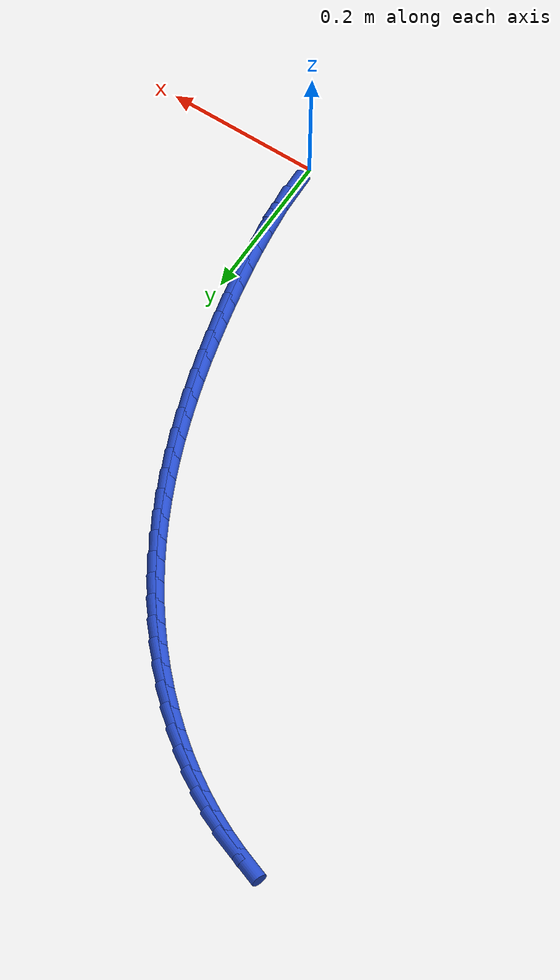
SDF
<sdf version="1.6">
 <world name="default">
  <model name="ground_plane">
   <static>1</static>
   <link name="link">
    <collision name="collision">
     <geometry><plane><normal>0 0 1</normal><size>100 100</size></plane></geometry>
     <surface><friction><ode><mu>100</mu><mu2>50</mu2></ode></friction></surface>
    </collision>
    <visual name="visual">
     <cast_shadows>0</cast_shadows>
     <geometry><plane><normal>0 0 1</normal><size>100 100</size></plane></geometry>
     <material>
      <script><uri>file://media/materials/scripts/gazebo.material</uri><name>Gazebo/WhiteGlow</name></script>
     </material>
    </visual>
   </link>
  </model>
  <model name="line">
   <link name="link_3">
    <pose>-0.003607352523385755 0.08382974127847832 0.01 0 1.57 -1.4645300538066999</pose>
    <collision name="collision">
     <geometry><cylinder><radius>0.01</radius><length>0.08</length></cylinder></geometry>
    </collision>
    <visual name="visual">
     <material>
      <script><name>Gazebo/Blue</name><uri>file://media/materials/scripts/gazebo.material</uri></script>
     </material>
     <geometry><cylinder><radius>0.01</radius><length>0.08</length></cylinder></geometry>
    </visual>
   </link>
   <link name="link_4">
    <pose>-0.0065976549613141495 0.1118634518213048 0.01 0 1.57 -1.437489420957152</pose>
    <collision name="collision">
     <geometry><cylinder><radius>0.01</radius><length>0.08</length></cylinder></geometry>
    </collision>
    <visual name="visual">
     <material>
      <script><name>Gazebo/Blue</name><uri>file://media/materials/scripts/gazebo.material</uri></script>
     </material>
     <geometry><cylinder><radius>0.01</radius><length>0.08</length></cylinder></geometry>
    </visual>
   </link>
   <link name="link_5">
    <pose>-0.010358168758492799 0.1399055974653575 0.01 0 1.57 -1.4131174889527256</pose>
    <collision name="collision">
     <geometry><cylinder><radius>0.01</radius><length>0.08</length></cylinder></geometry>
    </collision>
    <visual name="visual">
     <material>
      <script><name>Gazebo/Blue</name><uri>file://media/materials/scripts/gazebo.material</uri></script>
     </material>
     <geometry><cylinder><radius>0.01</radius><length>0.08</length></cylinder></geometry>
    </visual>
   </link>
   <link name="link_6">
    <pose>-0.014814665251431929 0.1679341002363722 0.01 0 1.57 -1.39133521005308</pose>
    <collision name="collision">
     <geometry><cylinder><radius>0.01</radius><length>0.08</length></cylinder></geometry>
    </collision>
    <visual name="visual">
     <material>
      <script><name>Gazebo/Blue</name><uri>file://media/materials/scripts/gazebo.material</uri></script>
     </material>
     <geometry><cylinder><radius>0.01</radius><length>0.08</length></cylinder></geometry>
    </visual>
   </link>
   <link name="link_7">
    <pose>-0.019892915776641748 0.19592688216008453 0.01 0 1.57 -1.372066318699521</pose>
    <collision name="collision">
     <geometry><cylinder><radius>0.01</radius><length>0.08</length></cylinder></geometry>
    </collision>
    <visual name="visual">
     <material>
      <script><name>Gazebo/Blue</name><uri>file://media/materials/scripts/gazebo.material</uri></script>
     </material>
     <geometry><cylinder><radius>0.01</radius><length>0.08</length></cylinder></geometry>
    </visual>
   </link>
   <link name="link_8">
    <pose>-0.025518691670632452 0.22386186526223 0.01 0 1.57 -1.3549656669186012</pose>
    <collision name="collision">
     <geometry><cylinder><radius>0.01</radius><length>0.08</length></cylinder></geometry>
    </collision>
    <visual name="visual">
     <material>
      <script><name>Gazebo/Blue</name><uri>file://media/materials/scripts/gazebo.material</uri></script>
     </material>
     <geometry><cylinder><radius>0.01</radius><length>0.08</length></cylinder></geometry>
    </visual>
   </link>
   <link name="link_9">
    <pose>-0.03162565596827973 0.2517163037976803 0.01 0 1.57 -1.3376442971754925</pose>
    <collision name="collision">
     <geometry><cylinder><radius>0.01</radius><length>0.08</length></cylinder></geometry>
    </collision>
    <visual name="visual">
     <material>
      <script><name>Gazebo/Blue</name><uri>file://media/materials/scripts/gazebo.material</uri></script>
     </material>
     <geometry><cylinder><radius>0.01</radius><length>0.08</length></cylinder></geometry>
    </visual>
   </link>
   <link name="link_10">
    <pose>-0.038214394773935435 0.2794617892002172 0.01 0 1.57 -1.3188914202939175</pose>
    <collision name="collision">
     <geometry><cylinder><radius>0.01</radius><length>0.08</length></cylinder></geometry>
    </collision>
    <visual name="visual">
     <material>
      <script><name>Gazebo/Blue</name><uri>file://media/materials/scripts/gazebo.material</uri></script>
     </material>
     <geometry><cylinder><radius>0.01</radius><length>0.08</length></cylinder></geometry>
    </visual>
   </link>
   <link name="link_11">
    <pose>-0.045319218790244274 0.3070670592334612 0.01 0 1.57 -1.2986659421992113</pose>
    <collision name="collision">
     <geometry><cylinder><radius>0.01</radius><length>0.08</length></cylinder></geometry>
    </collision>
    <visual name="visual">
     <material>
      <script><name>Gazebo/Blue</name><uri>file://media/materials/scripts/gazebo.material</uri></script>
     </material>
     <geometry><cylinder><radius>0.01</radius><length>0.08</length></cylinder></geometry>
    </visual>
   </link>
   <link name="link_12">
    <pose>-0.05297469626796127 0.3345008298681169 0.01 0 1.57 -1.2769356533541465</pose>
    <collision name="collision">
     <geometry><cylinder><radius>0.01</radius><length>0.08</length></cylinder></geometry>
    </collision>
    <visual name="visual">
     <material>
      <script><name>Gazebo/Blue</name><uri>file://media/materials/scripts/gazebo.material</uri></script>
     </material>
     <geometry><cylinder><radius>0.01</radius><length>0.08</length></cylinder></geometry>
    </visual>
   </link>
   <link name="link_13">
    <pose>-0.061215395457841486 0.36173181707488805 0.01 0 1.57 -1.2536695181772743</pose>
    <collision name="collision">
     <geometry><cylinder><radius>0.01</radius><length>0.08</length></cylinder></geometry>
    </collision>
    <visual name="visual">
     <material>
      <script><name>Gazebo/Blue</name><uri>file://media/materials/scripts/gazebo.material</uri></script>
     </material>
     <geometry><cylinder><radius>0.01</radius><length>0.08</length></cylinder></geometry>
    </visual>
   </link>
   <link name="link_14">
    <pose>-0.07007588461063995 0.38872873682447906 0.01 0 1.57 -1.228839149628577</pose>
    <collision name="collision">
     <geometry><cylinder><radius>0.01</radius><length>0.08</length></cylinder></geometry>
    </collision>
    <visual name="visual">
     <material>
      <script><name>Gazebo/Blue</name><uri>file://media/materials/scripts/gazebo.material</uri></script>
     </material>
     <geometry><cylinder><radius>0.01</radius><length>0.08</length></cylinder></geometry>
    </visual>
   </link>
   <link name="link_15">
    <pose>-0.0795907319771117 0.41546030508759385 0.01 0 1.57 -1.2024204957721947</pose>
    <collision name="collision">
     <geometry><cylinder><radius>0.01</radius><length>0.08</length></cylinder></geometry>
    </collision>
    <visual name="visual">
     <material>
      <script><name>Gazebo/Blue</name><uri>file://media/materials/scripts/gazebo.material</uri></script>
     </material>
     <geometry><cylinder><radius>0.01</radius><length>0.08</length></cylinder></geometry>
    </visual>
   </link>
   <link name="link_16">
    <pose>-0.08979450580801174 0.4418952378349365 0.01 0 1.57 -1.1743957397551579</pose>
    <collision name="collision">
     <geometry><cylinder><radius>0.01</radius><length>0.08</length></cylinder></geometry>
    </collision>
    <visual name="visual">
     <material>
      <script><name>Gazebo/Blue</name><uri>file://media/materials/scripts/gazebo.material</uri></script>
     </material>
     <geometry><cylinder><radius>0.01</radius><length>0.08</length></cylinder></geometry>
    </visual>
   </link>
   <link name="link_17">
    <pose>-0.10072177435409517 0.46800225103721155 0.01 0 1.57 -1.1447553988098094</pose>
    <collision name="collision">
     <geometry><cylinder><radius>0.01</radius><length>0.08</length></cylinder></geometry>
    </collision>
    <visual name="visual">
     <material>
      <script><name>Gazebo/Blue</name><uri>file://media/materials/scripts/gazebo.material</uri></script>
     </material>
     <geometry><cylinder><radius>0.01</radius><length>0.08</length></cylinder></geometry>
    </visual>
   </link>
   <link name="link_18">
    <pose>-0.11240710586611694 0.4937500606651226 0.01 0 1.57 -1.1135005869287327</pose>
    <collision name="collision">
     <geometry><cylinder><radius>0.01</radius><length>0.08</length></cylinder></geometry>
    </collision>
    <visual name="visual">
     <material>
      <script><name>Gazebo/Blue</name><uri>file://media/materials/scripts/gazebo.material</uri></script>
     </material>
     <geometry><cylinder><radius>0.01</radius><length>0.08</length></cylinder></geometry>
    </visual>
   </link>
   <link name="link_19">
    <pose>-0.1248850685948322 0.5191073826893744 0.01 0 1.57 -1.0806453798587448</pose>
    <collision name="collision">
     <geometry><cylinder><radius>0.01</radius><length>0.08</length></cylinder></geometry>
    </collision>
    <visual name="visual">
     <material>
      <script><name>Gazebo/Blue</name><uri>file://media/materials/scripts/gazebo.material</uri></script>
     </material>
     <geometry><cylinder><radius>0.01</radius><length>0.08</length></cylinder></geometry>
    </visual>
   </link>
   <link name="link_20">
    <pose>-0.1381902307909959 0.5440429330806705 0.01 0 1.57 -1.0462191909756156</pose>
    <collision name="collision">
     <geometry><cylinder><radius>0.01</radius><length>0.08</length></cylinder></geometry>
    </collision>
    <visual name="visual">
     <material>
      <script><name>Gazebo/Blue</name><uri>file://media/materials/scripts/gazebo.material</uri></script>
     </material>
     <geometry><cylinder><radius>0.01</radius><length>0.08</length></cylinder></geometry>
    </visual>
   </link>
   <link name="link_21">
    <pose>-0.15235716070536312 0.5685254278097154 0.01 0 1.57 -1.0102690345931147</pose>
    <collision name="collision">
     <geometry><cylinder><radius>0.01</radius><length>0.08</length></cylinder></geometry>
    </collision>
    <visual name="visual">
     <material>
      <script><name>Gazebo/Blue</name><uri>file://media/materials/scripts/gazebo.material</uri></script>
     </material>
     <geometry><cylinder><radius>0.01</radius><length>0.08</length></cylinder></geometry>
    </visual>
   </link>
   <link name="link_22">
    <pose>-0.16742042658868891 0.5925235828472133 0.01 0 1.57 -0.9728615229176963</pose>
    <collision name="collision">
     <geometry><cylinder><radius>0.01</radius><length>0.08</length></cylinder></geometry>
    </collision>
    <visual name="visual">
     <material>
      <script><name>Gazebo/Blue</name><uri>file://media/materials/scripts/gazebo.material</uri></script>
     </material>
     <geometry><cylinder><radius>0.01</radius><length>0.08</length></cylinder></geometry>
    </visual>
   </link>
   <link name="link_23">
    <pose>-0.18341459669172822 0.6160061141638681 0.01 0 1.57 -0.934108247288026</pose>
    <collision name="collision">
     <geometry><cylinder><radius>0.01</radius><length>0.08</length></cylinder></geometry>
    </collision>
    <visual name="visual">
     <material>
      <script><name>Gazebo/Blue</name><uri>file://media/materials/scripts/gazebo.material</uri></script>
     </material>
     <geometry><cylinder><radius>0.01</radius><length>0.08</length></cylinder></geometry>
    </visual>
   </link>
   <link name="link_24">
    <pose>-0.20037212419622707 0.6389400204796291 0.01 0 1.57 -0.8944481296883096</pose>
    <collision name="collision">
     <geometry><cylinder><radius>0.01</radius><length>0.08</length></cylinder></geometry>
    </collision>
    <visual name="visual">
     <material>
      <script><name>Gazebo/Blue</name><uri>file://media/materials/scripts/gazebo.material</uri></script>
     </material>
     <geometry><cylinder><radius>0.01</radius><length>0.08</length></cylinder></geometry>
    </visual>
   </link>
   <link name="link_25">
    <pose>-0.2182895195742106 0.661263118182745 0.01 0 1.57 -0.8540329866886747</pose>
    <collision name="collision">
     <geometry><cylinder><radius>0.01</radius><length>0.08</length></cylinder></geometry>
    </collision>
    <visual name="visual">
     <material>
      <script><name>Gazebo/Blue</name><uri>file://media/materials/scripts/gazebo.material</uri></script>
     </material>
     <geometry><cylinder><radius>0.01</radius><length>0.08</length></cylinder></geometry>
    </visual>
   </link>
   <link name="link_26">
    <pose>-0.2371332489161435 0.6828888302555329 0.01 0 1.57 -0.8126335712561945</pose>
    <collision name="collision">
     <geometry><cylinder><radius>0.01</radius><length>0.08</length></cylinder></geometry>
    </collision>
    <visual name="visual">
     <material>
      <script><name>Gazebo/Blue</name><uri>file://media/materials/scripts/gazebo.material</uri></script>
     </material>
     <geometry><cylinder><radius>0.01</radius><length>0.08</length></cylinder></geometry>
    </visual>
   </link>
   <link name="link_27">
    <pose>-0.2568688548037551 0.7037298298721174 0.01 0 1.57 -0.7700139202231988</pose>
    <collision name="collision">
     <geometry><cylinder><radius>0.01</radius><length>0.08</length></cylinder></geometry>
    </collision>
    <visual name="visual">
     <material>
      <script><name>Gazebo/Blue</name><uri>file://media/materials/scripts/gazebo.material</uri></script>
     </material>
     <geometry><cylinder><radius>0.01</radius><length>0.08</length></cylinder></geometry>
    </visual>
   </link>
   <link name="link_28">
    <pose>-0.2774618798187741 0.7236987902066223 0.01 0 1.57 -0.725941843986509</pose>
    <collision name="collision">
     <geometry><cylinder><radius>0.01</radius><length>0.08</length></cylinder></geometry>
    </collision>
    <visual name="visual">
     <material>
      <script><name>Gazebo/Blue</name><uri>file://media/materials/scripts/gazebo.material</uri></script>
     </material>
     <geometry><cylinder><radius>0.01</radius><length>0.08</length></cylinder></geometry>
    </visual>
   </link>
   <link name="link_29">
    <pose>-0.2988778665429295 0.7427083844331717 0.01 0 1.57 -0.6801902253976636</pose>
    <collision name="collision">
     <geometry><cylinder><radius>0.01</radius><length>0.08</length></cylinder></geometry>
    </collision>
    <visual name="visual">
     <material>
      <script><name>Gazebo/Blue</name><uri>file://media/materials/scripts/gazebo.material</uri></script>
     </material>
     <geometry><cylinder><radius>0.01</radius><length>0.08</length></cylinder></geometry>
    </visual>
   </link>
   <link name="link_30">
    <pose>-0.32108235755795034 0.7606712857258892 0.01 0 1.57 -0.6325397799458747</pose>
    <collision name="collision">
     <geometry><cylinder><radius>0.01</radius><length>0.08</length></cylinder></geometry>
    </collision>
    <visual name="visual">
     <material>
      <script><name>Gazebo/Blue</name><uri>file://media/materials/scripts/gazebo.material</uri></script>
     </material>
     <geometry><cylinder><radius>0.01</radius><length>0.08</length></cylinder></geometry>
    </visual>
   </link>
   <link name="link_31">
    <pose>-0.3440408954455655 0.7775001672588991 0.01 0 1.57 -0.5827835536035806</pose>
    <collision name="collision">
     <geometry><cylinder><radius>0.01</radius><length>0.08</length></cylinder></geometry>
    </collision>
    <visual name="visual">
     <material>
      <script><name>Gazebo/Blue</name><uri>file://media/materials/scripts/gazebo.material</uri></script>
     </material>
     <geometry><cylinder><radius>0.01</radius><length>0.08</length></cylinder></geometry>
    </visual>
   </link>
   <link name="link_32">
    <pose>-0.36771902278750407 0.7931077022063253 0.01 0 1.57 -0.5307334299179657</pose>
    <collision name="collision">
     <geometry><cylinder><radius>0.01</radius><length>0.08</length></cylinder></geometry>
    </collision>
    <visual name="visual">
     <material>
      <script><name>Gazebo/Blue</name><uri>file://media/materials/scripts/gazebo.material</uri></script>
     </material>
     <geometry><cylinder><radius>0.01</radius><length>0.08</length></cylinder></geometry>
    </visual>
   </link>
   <link name="link_33">
    <pose>-0.3920822821654948 0.8074065637422917 0.01 0 1.57 -0.4762288524280387</pose>
    <collision name="collision">
     <geometry><cylinder><radius>0.01</radius><length>0.08</length></cylinder></geometry>
    </collision>
    <visual name="visual">
     <material>
      <script><name>Gazebo/Blue</name><uri>file://media/materials/scripts/gazebo.material</uri></script>
     </material>
     <geometry><cylinder><radius>0.01</radius><length>0.08</length></cylinder></geometry>
    </visual>
   </link>
   <link name="link_34">
    <pose>-0.41709621616126674 0.8203094250409222 0.01 0 1.57 -0.41938294566894946</pose>
    <collision name="collision">
     <geometry><cylinder><radius>0.01</radius><length>0.08</length></cylinder></geometry>
    </collision>
    <visual name="visual">
     <material>
      <script><name>Gazebo/Blue</name><uri>file://media/materials/scripts/gazebo.material</uri></script>
     </material>
     <geometry><cylinder><radius>0.01</radius><length>0.08</length></cylinder></geometry>
    </visual>
   </link>
   <link name="link_35">
    <pose>-0.44272442109272364 0.8317353152637407 0.01 0 1.57 -0.3715520825842486</pose>
    <collision name="collision">
     <geometry><cylinder><radius>0.01</radius><length>0.08</length></cylinder></geometry>
    </collision>
    <visual name="visual">
     <material>
      <script><name>Gazebo/Blue</name><uri>file://media/materials/scripts/gazebo.material</uri></script>
     </material>
     <geometry><cylinder><radius>0.01</radius><length>0.08</length></cylinder></geometry>
    </visual>
   </link>
   <link name="link_272">
    <pose>-0.0017270040755870556 0.055920448138215804 0.01 0 1.57 -1.5399229094687674</pose>
    <collision name="collision">
     <geometry><cylinder><radius>0.01</radius><length>0.08</length></cylinder></geometry>
    </collision>
    <visual name="visual">
     <material>
      <script><name>Gazebo/Blue</name><uri>file://media/materials/scripts/gazebo.material</uri></script>
     </material>
     <geometry><cylinder><radius>0.01</radius><length>0.08</length></cylinder></geometry>
    </visual>
   </link>
  </model>
 </world>
</sdf>
